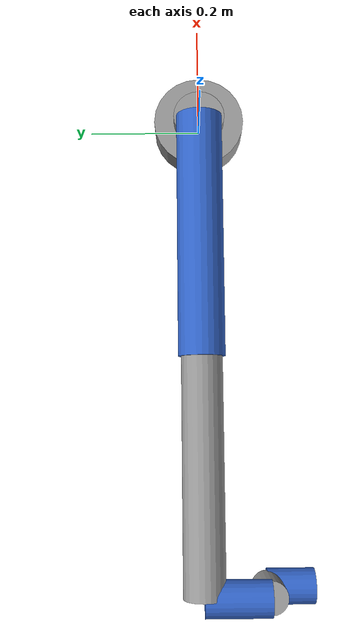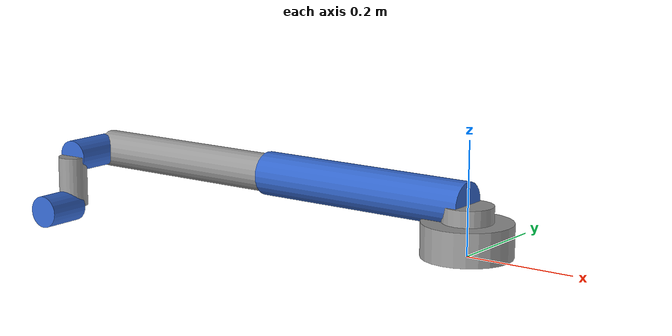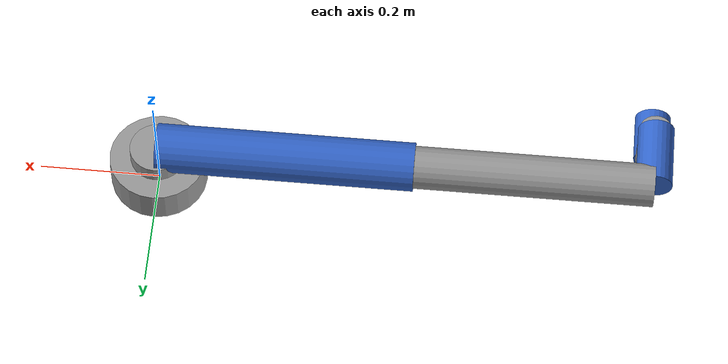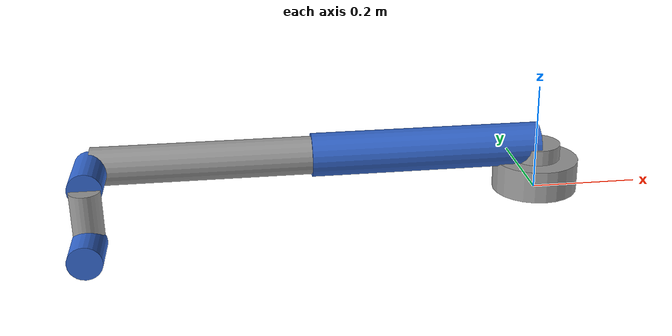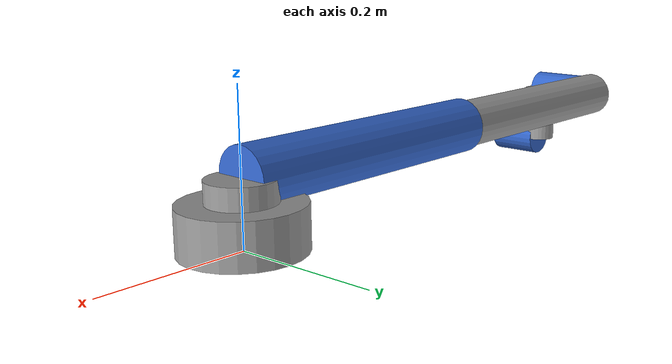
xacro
<?xml version="1.0"?>
<robot xmlns:xacro="http://www.ros.org/wiki/xacro" name="ur5">
    <xacro:arg name="initial_positions_file" default="initial_positions.yaml" />

    <!-- Import ur5 urdf file -->
    <xacro:include filename="$(find ur5_pickplace_moveit_config)/urdf/ur5_moveit.urdf" />

    <!-- Import control_xacro -->
    <xacro:include filename="ur5.ros2_control.xacro" />

    <xacro:ur5_ros2_control name="FakeSystem" initial_positions_file="$(arg initial_positions_file)"/>

</robot>

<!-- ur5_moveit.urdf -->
<robot name="ur5">

  <material name="grey"><color rgba="0.6 0.6 0.6 1.0"/></material>
  <material name="blue"><color rgba="0.2 0.4 0.8 1.0"/></material>

  <link name="base_link">
    <visual>
      <origin xyz="0 0 0.03" rpy="0 0 0"/>
      <geometry><cylinder radius="0.08" length="0.06"/></geometry>
      <material name="grey"/>
    </visual>
    <collision>
      <origin xyz="0 0 0.03" rpy="0 0 0"/>
      <geometry><cylinder radius="0.04" length="0.05"/></geometry>
    </collision>
  </link>

  <joint name="shoulder_pan_joint" type="revolute">
    <parent link="base_link"/>
    <child link="shoulder_link"/>
    <origin xyz="0 0 0" rpy="0 0 0"/>
    <axis xyz="0 0 1"/>
    <limit lower="-6.2831853" upper="6.2831853" effort="50" velocity="3.1415927"/>
  </joint>

  <link name="shoulder_link">
    <visual>
      <origin xyz="0 0 0.0445795" rpy="0 0 0"/>
      <geometry><cylinder radius="0.045" length="0.089159"/></geometry>
      <material name="grey"/>
    </visual>
    <collision>
      <origin xyz="0 0 0.0445795" rpy="0 0 0"/>
      <geometry><cylinder radius="0.0225" length="0.0802"/></geometry>
    </collision>
  </link>

  <joint name="shoulder_lift_joint" type="revolute">
    <parent link="shoulder_link"/>
    <child link="upper_arm_link"/>
    <origin xyz="0 0 0.089159" rpy="1.5707963 0 0"/>
    <axis xyz="0 0 1"/>
    <limit lower="-6.2831853" upper="6.2831853" effort="50" velocity="3.1415927"/>
  </joint>

  <link name="upper_arm_link">
    <visual>
      <origin xyz="-0.2125 0 0" rpy="0 1.5707963 0"/>
      <geometry><cylinder radius="0.04" length="0.425"/></geometry>
      <material name="blue"/>
    </visual>
    <collision>
      <origin xyz="-0.2125 0 0" rpy="0 1.5707963 0"/>
      <geometry><cylinder radius="0.02" length="0.3825"/></geometry>
    </collision>
  </link>

  <joint name="elbow_joint" type="revolute">
    <parent link="upper_arm_link"/>
    <child link="forearm_link"/>
    <origin xyz="-0.425 0 0" rpy="0 0 0"/>
    <axis xyz="0 0 1"/>
    <limit lower="-6.2831853" upper="6.2831853" effort="50" velocity="3.1415927"/>
  </joint>

  <link name="forearm_link">
    <visual>
      <origin xyz="-0.196125 0 0" rpy="0 1.5707963 0"/>
      <geometry><cylinder radius="0.035" length="0.39225"/></geometry>
      <material name="grey"/>
    </visual>
    <collision>
      <origin xyz="-0.196125 0 0" rpy="0 1.5707963 0"/>
      <geometry><cylinder radius="0.0175" length="0.353"/></geometry>
    </collision>
  </link>

  <joint name="wrist_1_joint" type="revolute">
    <parent link="forearm_link"/>
    <child link="wrist_1_link"/>
    <origin xyz="-0.39225 0 0" rpy="0 0 0"/>
    <axis xyz="0 0 1"/>
    <limit lower="-6.2831853" upper="6.2831853" effort="50" velocity="3.1415927"/>
  </joint>

  <link name="wrist_1_link">
    <visual>
      <origin xyz="0 0 0.054575" rpy="0 0 0"/>
      <geometry><cylinder radius="0.03" length="0.10915"/></geometry>
      <material name="blue"/>
    </visual>
    <collision>
      <origin xyz="0 0 0.054575" rpy="0 0 0"/>
      <geometry><cylinder radius="0.015" length="0.0982"/></geometry>
    </collision>
  </link>

  <joint name="wrist_2_joint" type="revolute">
    <parent link="wrist_1_link"/>
    <child link="wrist_2_link"/>
    <origin xyz="0 0 0.10915" rpy="1.5707963 0 0"/>
    <axis xyz="0 0 1"/>
    <limit lower="-6.2831853" upper="6.2831853" effort="50" velocity="3.1415927"/>
  </joint>

  <link name="wrist_2_link">
    <visual>
      <origin xyz="0 0 0.047325" rpy="0 0 0"/>
      <geometry><cylinder radius="0.027" length="0.09465"/></geometry>
      <material name="grey"/>
    </visual>
    <collision>
      <origin xyz="0 0 0.047325" rpy="0 0 0"/>
      <geometry><cylinder radius="0.0135" length="0.0852"/></geometry>
    </collision>
  </link>

  <joint name="wrist_3_joint" type="revolute">
    <parent link="wrist_2_link"/>
    <child link="wrist_3_link"/>
    <origin xyz="0 0 0.09465" rpy="-1.5707963 0 0"/>
    <axis xyz="0 0 1"/>
    <limit lower="-6.2831853" upper="6.2831853" effort="50" velocity="3.1415927"/>
  </joint>

  <link name="wrist_3_link">
    <visual>
      <origin xyz="0 0 0.04115" rpy="0 0 0"/>
      <geometry><cylinder radius="0.03" length="0.0823"/></geometry>
      <material name="blue"/>
    </visual>
    <collision>
      <origin xyz="0 0 0.04115" rpy="0 0 0"/>
      <geometry><cylinder radius="0.015" length="0.0741"/></geometry>
    </collision>
  </link>

  <joint name="wrist_3-tool0_fixed_joint" type="fixed">
    <parent link="wrist_3_link"/>
    <child link="tool0"/>
    <origin xyz="0 0 0.0823" rpy="0 0 0"/>
  </joint>

  <link name="tool0"/>

</robot>
